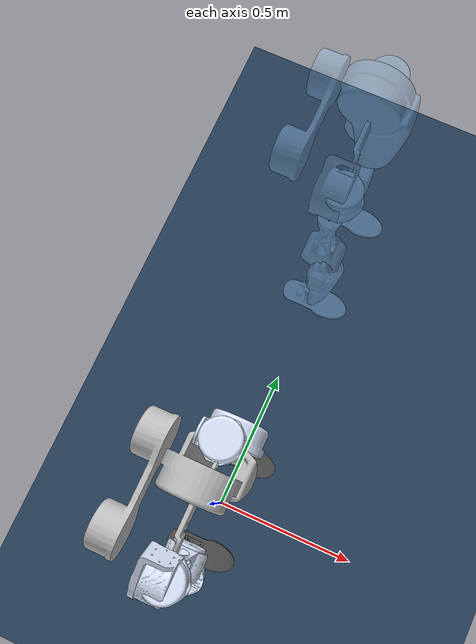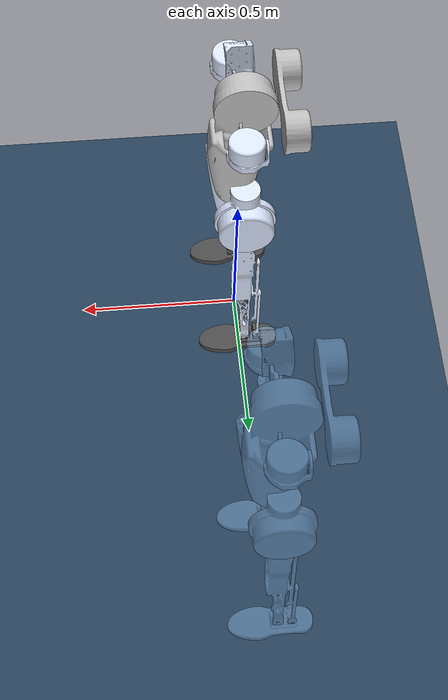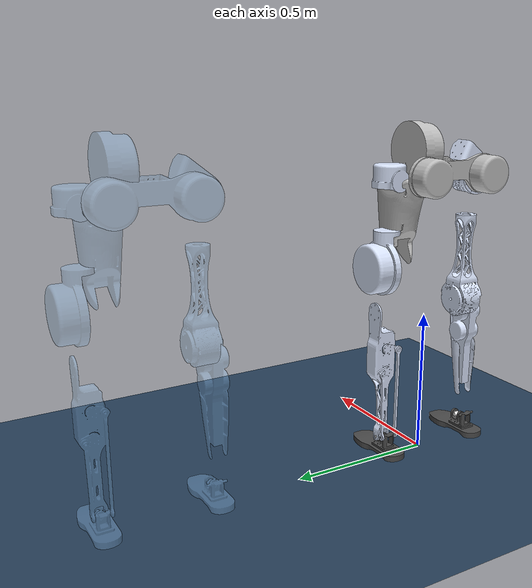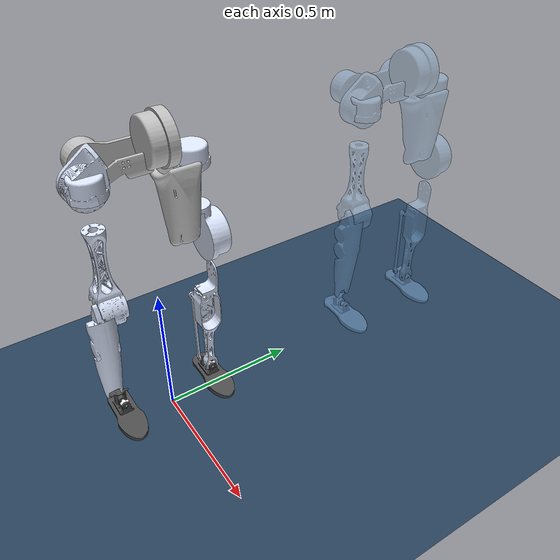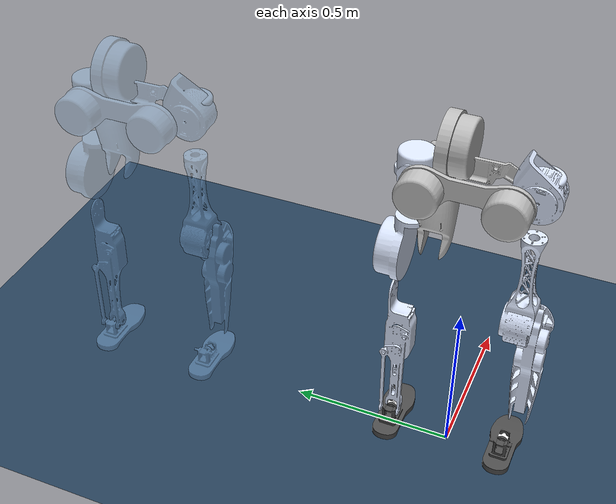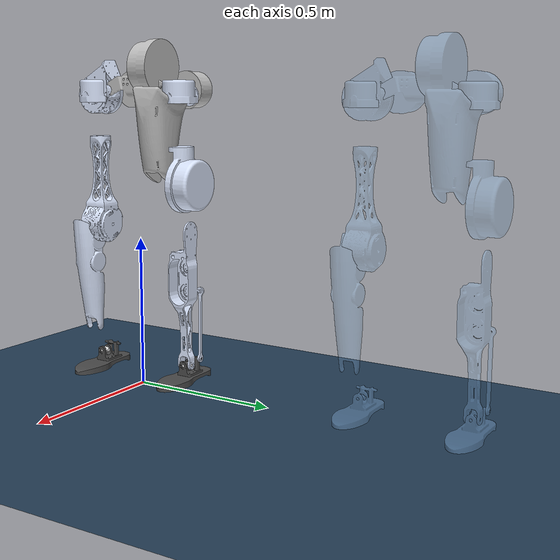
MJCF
<mujoco model="roboot16_scene_1">
  <include file="/Users/zhuran/IsaacLab/roboot16/assets/Roboot1.6/xml/roboot16_1.xml" />

  <visual>
    <headlight diffuse="0.6 0.6 0.6" ambient="0.3 0.3 0.3" specular="0 0 0" />
    <rgba haze="0.15 0.25 0.35 1" />
    <global azimuth="140" elevation="-20" />
  </visual>

  <asset>
    <texture type="skybox" builtin="gradient" rgb1="0.3 0.5 0.7" rgb2="0 0 0" width="512" height="3072" />
    <texture type="2d" name="groundplane" builtin="checker" mark="edge" rgb1="0.2 0.3 0.4" rgb2="0.1 0.2 0.3" markrgb="0.8 0.8 0.8" width="300" height="300" />
    <material name="groundplane" texture="groundplane" texuniform="true" texrepeat="5 5" reflectance="0.2" />
  </asset>

  <worldbody>
    <light pos="0 0 1.5" dir="0 0 -1" directional="true" />
    <geom name="floor" size="0 0 0.05" type="plane" material="groundplane" condim="3" friction="1.2 0.02 0.01" />
  <body name="ref_base_link" pos="0 1.0 1.0" childclass="roboot16">
      <inertial pos="0.00049152 -3.0954e-08 0.25629" mass="31.023" fullinertia="0.26899 0.13808 0.24725 4.7185e-10 -2.7449e-06 1.2373e-10" />
      <freejoint />
      <geom class="visual" material="silver" mesh="base_link" contype="0" conaffinity="0" rgba="0.6 0.8 1.0 0.35" />
      <geom class="collision" type="box" pos="0 0 0.21" size="0.1 0.105 0.175" rgba="0.75 0.75 0.75 0.35" contype="0" conaffinity="0" />
      <site name="ref_imu" pos="0 0 0.26" />

      <body name="ref_right_hip_pitch_link" pos="0.00049158 -0.10845 0.059136">
        <inertial pos="-0.014554 -0.039773 -0.051175" quat="0.965049 -0.245902 0.0774212 -0.0471021" mass="2.634" diaginertia="0.00201801 0.0014948 0.000807932" />
        <joint name="ref_right_hip_pitch_joint" axis="0 0.906308 0.422619" range="-2.6 2.6" />
        <geom class="visual" material="ice" mesh="left_hip_pitch_link" contype="0" conaffinity="0" rgba="0.6 0.8 1.0 0.35" />
        <geom class="collision" type="cylinder" pos="-0.06 -0.06 -0.08" quat="0.707388 0 0.706825 0" size="0.06 0.025" contype="0" conaffinity="0" rgba="0.6 0.8 1.0 0.35" />

        <body name="ref_right_hip_roll_link" pos="0.019165 -0.058655 -0.083623">
          <inertial pos="0.0074434 -2.3963e-05 -0.070083" quat="0.699455 0.704896 -0.0825397 0.0840927" mass="1.896" diaginertia="0.000595008 0.000509235 0.000471627" />
          <joint name="ref_right_hip_roll_joint" axis="-1 0 0" range="-0.8 2" />
          <geom class="visual" material="ice" mesh="left_hip_roll_link" contype="0" conaffinity="0" rgba="0.6 0.8 1.0 0.35" />
          <geom class="collision" type="cylinder" pos="0.02 0 0" quat="0.707388 0 0.706825 0" size="0.06 0.01" contype="0" conaffinity="0" rgba="0.6 0.8 1.0 0.35" />

          <body name="ref_right_hip_yaw_link" pos="-0.017415 -0.0036252 -0.14039">
            <inertial pos="5.0405e-05 0.003536 -0.17718" quat="0.706847 0.000100203 0.000157186 0.707366" mass="2.865" diaginertia="0.0070209 0.0068188 0.000931829" />
            <joint name="ref_right_hip_yaw_joint" axis="0 0 1" range="-2.6 2.6" />
            <geom class="visual" material="ice" mesh="left_hip_yaw_link" contype="0" conaffinity="0" rgba="0.6 0.8 1.0 0.35" />
            <geom class="collision" type="cylinder" pos="0 0 -0.15" size="0.055 0.11" contype="0" conaffinity="0" rgba="0.6 0.8 1.0 0.35" />

            <body name="ref_right_knee_link" pos="0 -0.0365 -0.298">
              <inertial pos="-0.01609 0.029412 -0.20201" quat="0.999949 0.000804618 0.00958423 -0.00317808" mass="2.161" diaginertia="0.011596 0.011377 0.000743545" />
              <joint name="ref_right_knee_joint" axis="0 1 0" range="-0.2 1.8" />
              <geom class="visual" material="ice" mesh="left_knee_link" contype="0" conaffinity="0" rgba="0.6 0.8 1.0 0.35" />
              <geom class="collision" type="box" pos="0 0.028 -0.19" size="0.045 0.032 0.08" contype="0" conaffinity="0" rgba="0.6 0.8 1.0 0.35" />
              <geom name="ref_right_shank_collision" class="collision" type="capsule" fromto="0 0.018 -0.11 0 0.018 -0.36" size="0.03" rgba="0.8 0.5 0.2 0.35" contype="0" conaffinity="0" />

              <body name="ref_right_ankle_pitch_link" pos="-0.013 0.030625 -0.44831">
                <inertial pos="0 0 0" quat="0.504216 0.504216 -0.495749 0.495749" mass="0.007" diaginertia="1.18541e-06 7.84935e-07 5.3402e-07" />
                <joint name="ref_right_ankle_pitch_joint" axis="0 1 0" range="-0.5 1" />
                <geom class="visual" material="white" mesh="left_ankle_pitch_link" contype="0" conaffinity="0" rgba="0.6 0.8 1.0 0.35" />

                <body name="ref_right_ankle_roll_link" pos="-0.0023336 0 3.9519e-05">
                  <inertial pos="0.0084316 0.00010541 -0.0362" quat="-0.00103283 0.718201 -0.0010349 0.695834" mass="0.72" diaginertia="0.00263717 0.0023595 0.000370292" />
                  <joint name="ref_right_ankle_roll_joint" axis="1 0 0" range="-0.4 0.4" />
                  <geom class="visual" material="dark" mesh="left_ankle_roll_link" contype="0" conaffinity="0" rgba="0.6 0.8 1.0 0.35" />
                  <geom name="ref_right_foot_fore_collision" class="foot_collision" type="box" pos="0.072 0 -0.048" size="0.06 0.045 0.008" rgba="0.2 0.8 0.2 0.35" contype="0" conaffinity="0" />
                  <geom name="ref_right_foot_rear_collision" class="foot_collision" type="box" pos="-0.078 0 -0.0458" size="0.022 0.034 0.008" rgba="0.2 0.8 0.2 0.35" contype="0" conaffinity="0" />
                  <geom name="ref_right_foot_heel_collision" class="foot_collision" type="box" pos="-0.045 0 -0.042" size="0.03 0.038 0.006" rgba="0.2 0.8 0.2 0.35" contype="0" conaffinity="0" />
                </body>
              </body>
            </body>
          </body>
        </body>
      </body>

      <body name="ref_left_hip_pitch_link" pos="0.00049158 0.095534 0.065158">
        <inertial pos="-0.014554 0.052688 -0.057198" quat="0.965048 0.245905 0.0774219 0.0471014" mass="2.634" diaginertia="0.00201801 0.0014948 0.00080794" />
        <joint name="ref_left_hip_pitch_joint" axis="0 0.906308 -0.422619" range="-2.6 2.6" />
        <geom class="visual" material="silver" mesh="right_hip_pitch_link" contype="0" conaffinity="0" rgba="0.6 0.8 1.0 0.35" />
        <geom class="collision" type="cylinder" pos="-0.06 0.07 -0.09" quat="0.707388 0 0.706825 0" size="0.06 0.025" contype="0" conaffinity="0" rgba="0.6 0.8 1.0 0.35" />

        <body name="ref_left_hip_roll_link" pos="0.0030702 0.07157 -0.089646">
          <inertial pos="0.023539 2.3928e-05 -0.070083" quat="0.704894 0.699457 -0.0840917 0.0825408" mass="1.896" diaginertia="0.000595008 0.000509235 0.000471627" />
          <joint name="ref_left_hip_roll_joint" axis="1 0 0" range="-0.8 2" />
          <geom class="visual" material="ice" mesh="right_hip_roll_link" contype="0" conaffinity="0" rgba="0.6 0.8 1.0 0.35" />
          <geom class="collision" type="cylinder" pos="0.04 0 0" quat="0.707388 0 0.706825 0" size="0.06 0.01" contype="0" conaffinity="0" rgba="0.6 0.8 1.0 0.35" />

          <body name="ref_left_hip_yaw_link" pos="-0.0013202 0.0036252 -0.14039">
            <inertial pos="5.0461e-05 -0.003536 -0.17717" quat="0.707365 0.000157066 0.000100226 0.706849" mass="2.865" diaginertia="0.0070209 0.0068188 0.000931829" />
            <joint name="ref_left_hip_yaw_joint" axis="0 0 -1" range="-2.6 2.6" />
            <geom class="visual" material="ice" mesh="right_hip_yaw_link" contype="0" conaffinity="0" rgba="0.6 0.8 1.0 0.35" />
            <geom class="collision" type="cylinder" pos="0 0 -0.15" size="0.055 0.11" contype="0" conaffinity="0" rgba="0.6 0.8 1.0 0.35" />

            <body name="ref_left_knee_link" pos="0 0.035647 -0.29631">
              <inertial pos="-0.01609 -0.028559 -0.2037" quat="0.999949 -0.000804527 0.00958423 0.00317776" mass="2.161" diaginertia="0.011596 0.011377 0.000743545" />
              <joint name="ref_left_knee_joint" axis="0 1 0" range="-0.2 1.8" />
              <geom class="visual" material="ice" mesh="right_knee_link" contype="0" conaffinity="0" rgba="0.6 0.8 1.0 0.35" />
              <geom class="collision" type="box" pos="0 -0.028 -0.19" size="0.045 0.032 0.08" contype="0" conaffinity="0" rgba="0.6 0.8 1.0 0.35" />
              <geom name="ref_left_shank_collision" class="collision" type="capsule" fromto="0 -0.018 -0.11 0 -0.018 -0.36" size="0.03" rgba="0.8 0.5 0.2 0.35" contype="0" conaffinity="0" />

              <body name="ref_left_ankle_pitch_link" pos="-0.013 -0.029772 -0.45">
                <inertial pos="0 0 0" quat="0.504216 0.504216 -0.495749 0.495749" mass="0.007" diaginertia="1.18541e-06 7.84935e-07 5.3402e-07" />
                <joint name="ref_left_ankle_pitch_joint" axis="0 1 0" range="-0.5 1" />
                <geom class="visual" material="white" mesh="right_ankle_pitch_link" contype="0" conaffinity="0" rgba="0.6 0.8 1.0 0.35" />

                <body name="ref_left_ankle_roll_link">
                  <inertial pos="0.006098 -0.00010547 -0.03616" quat="0.00103287 0.718201 0.00103542 0.695834" mass="0.72" diaginertia="0.00263717 0.0023595 0.000370292" />
                  <joint name="ref_left_ankle_roll_joint" axis="-1 0 0" range="-0.4 0.4" />
                  <geom class="visual" material="dark" mesh="right_ankle_roll_link" contype="0" conaffinity="0" rgba="0.6 0.8 1.0 0.35" />
                  <geom name="ref_left_foot_fore_collision" class="foot_collision" type="box" pos="0.072 0 -0.048" size="0.06 0.045 0.008" rgba="0.2 0.8 0.2 0.35" contype="0" conaffinity="0" />
                  <geom name="ref_left_foot_rear_collision" class="foot_collision" type="box" pos="-0.078 0 -0.0458" size="0.022 0.034 0.008" rgba="0.2 0.8 0.2 0.35" contype="0" conaffinity="0" />
                  <geom name="ref_left_foot_heel_collision" class="foot_collision" type="box" pos="-0.045 0 -0.042" size="0.03 0.038 0.006" rgba="0.2 0.8 0.2 0.35" contype="0" conaffinity="0" />
                </body>
              </body>
            </body>
          </body>
        </body>
      </body>
    </body>
  </worldbody>
</mujoco>

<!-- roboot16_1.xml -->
<mujoco model="roboot16_1">
  <compiler angle="radian" meshdir="../meshes" autolimits="true"/>

  <option timestep="0.005" iterations="50" ls_iterations="20"/>

  <default>
    <default class="roboot16">
      <joint damping="1" armature="0.01"/>
      <position ctrllimited="true" forcelimited="true"/>
      <default class="visual">
        <geom type="mesh" contype="0" conaffinity="0" group="2"/>
      </default>
      <default class="collision">
        <geom group="3" mass="0" density="0" contype="1" conaffinity="1" condim="3" friction="1.0 0.02 0.01"/>
      </default>
      <default class="foot_collision">
        <geom group="3" mass="0" density="0" contype="1" conaffinity="1" condim="3" friction="1.2 0.02 0.01"/>
      </default>
      <site size="0.01" group="4"/>
    </default>
  </default>

  <asset>
    <material name="silver" rgba="0.75294 0.75294 0.75294 1"/>
    <material name="ice" rgba="0.86667 0.9098 1 1"/>
    <material name="white" rgba="1 1 1 1"/>
    <material name="dark" rgba="0.29804 0.29804 0.29804 1"/>

    <mesh name="base_link" file="base_link.STL"/>
    <mesh name="left_hip_pitch_link" file="left_hip_pitch_link.STL"/>
    <mesh name="left_hip_roll_link" file="left_hip_roll_link.STL"/>
    <mesh name="left_hip_yaw_link" file="left_hip_yaw_link.STL"/>
    <mesh name="left_knee_link" file="left_knee_link.STL"/>
    <mesh name="left_ankle_pitch_link" file="left_ankle_pitch_link.STL"/>
    <mesh name="left_ankle_roll_link" file="left_ankle_roll_link.STL"/>
    <mesh name="right_hip_pitch_link" file="right_hip_pitch_link.STL"/>
    <mesh name="right_hip_roll_link" file="right_hip_roll_link.STL"/>
    <mesh name="right_hip_yaw_link" file="right_hip_yaw_link.STL"/>
    <mesh name="right_knee_link" file="right_knee_link.STL"/>
    <mesh name="right_ankle_pitch_link" file="right_ankle_pitch_link.STL"/>
    <mesh name="right_ankle_roll_link" file="right_ankle_roll_link.STL"/>
  </asset>

  <worldbody>
    <body name="base_link" pos="0 0 1.0" childclass="roboot16">
      <inertial pos="0.00049152 -3.0954e-08 0.25629" mass="31.023" fullinertia="0.26899 0.13808 0.24725 4.7185e-10 -2.7449e-06 1.2373e-10"/>
      <freejoint/>
      <geom class="visual" material="silver" mesh="base_link"/>
      <geom class="collision" type="box" pos="0 0 0.21" size="0.1 0.105 0.175" rgba="0.75 0.75 0.75 1"/>
      <site name="imu" pos="0 0 0.26"/>

      <body name="right_hip_pitch_link" pos="0.00049158 -0.10845 0.059136">
        <inertial pos="-0.014554 -0.039773 -0.051175" quat="0.965049 -0.245902 0.0774212 -0.0471021" mass="2.634" diaginertia="0.00201801 0.0014948 0.000807932"/>
        <joint name="right_hip_pitch_joint" axis="0 0.906308 0.422619" range="-2.6 2.6"/>
        <geom class="visual" material="ice" mesh="left_hip_pitch_link"/>
        <geom class="collision" type="cylinder" pos="-0.06 -0.06 -0.08" quat="0.707388 0 0.706825 0" size="0.06 0.025"/>

        <body name="right_hip_roll_link" pos="0.019165 -0.058655 -0.083623">
          <inertial pos="0.0074434 -2.3963e-05 -0.070083" quat="0.699455 0.704896 -0.0825397 0.0840927" mass="1.896" diaginertia="0.000595008 0.000509235 0.000471627"/>
          <joint name="right_hip_roll_joint" axis="-1 0 0" range="-0.8 2"/>
          <geom class="visual" material="ice" mesh="left_hip_roll_link"/>
          <geom class="collision" type="cylinder" pos="0.02 0 0" quat="0.707388 0 0.706825 0" size="0.06 0.01"/>

          <body name="right_hip_yaw_link" pos="-0.017415 -0.0036252 -0.14039">
            <inertial pos="5.0405e-05 0.003536 -0.17718" quat="0.706847 0.000100203 0.000157186 0.707366" mass="2.865" diaginertia="0.0070209 0.0068188 0.000931829"/>
            <joint name="right_hip_yaw_joint" axis="0 0 1" range="-2.6 2.6"/>
            <geom class="visual" material="ice" mesh="left_hip_yaw_link"/>
            <geom class="collision" type="cylinder" pos="0 0 -0.15" size="0.055 0.11"/>

            <body name="right_knee_link" pos="0 -0.0365 -0.298">
              <inertial pos="-0.01609 0.029412 -0.20201" quat="0.999949 0.000804618 0.00958423 -0.00317808" mass="2.161" diaginertia="0.011596 0.011377 0.000743545"/>
              <joint name="right_knee_joint" axis="0 1 0" range="-0.2 1.8"/>
              <geom class="visual" material="ice" mesh="left_knee_link"/>
              <geom class="collision" type="box" pos="0 0.028 -0.19" size="0.045 0.032 0.08"/>
              <geom name="right_shank_collision" class="collision" type="capsule" fromto="0 0.018 -0.11 0 0.018 -0.36" size="0.03" rgba="0.8 0.5 0.2 0.12"/>

              <body name="right_ankle_pitch_link" pos="-0.013 0.030625 -0.44831">
                <inertial pos="0 0 0" quat="0.504216 0.504216 -0.495749 0.495749" mass="0.007" diaginertia="1.18541e-06 7.84935e-07 5.3402e-07"/>
                <joint name="right_ankle_pitch_joint" axis="0 1 0" range="-0.5 1"/>
                <geom class="visual" material="white" mesh="left_ankle_pitch_link"/>

                <body name="right_ankle_roll_link" pos="-0.0023336 0 3.9519e-05">
                  <inertial pos="0.0084316 0.00010541 -0.0362" quat="-0.00103283 0.718201 -0.0010349 0.695834" mass="0.72" diaginertia="0.00263717 0.0023595 0.000370292"/>
                  <joint name="right_ankle_roll_joint" axis="1 0 0" range="-0.4 0.4"/>
                  <geom class="visual" material="dark" mesh="left_ankle_roll_link"/>
                  <geom
                    name="right_foot_fore_collision"
                    class="foot_collision"
                    type="box"
                    pos="0.072 0 -0.048"
                    size="0.06 0.045 0.008"
                    rgba="0.2 0.8 0.2 0.2"/>
                  <geom
                    name="right_foot_rear_collision"
                    class="foot_collision"
                    type="box"
                    pos="-0.078 0 -0.0458"
                    size="0.022 0.034 0.008"
                    rgba="0.2 0.8 0.2 0.2"/>
                  <geom
                    name="right_foot_heel_collision"
                    class="foot_collision"
                    type="box"
                    pos="-0.045 0 -0.042"
                    size="0.03 0.038 0.006"
                    rgba="0.2 0.8 0.2 0.2"/>
                </body>
              </body>
            </body>
          </body>
        </body>
      </body>

      <body name="left_hip_pitch_link" pos="0.00049158 0.095534 0.065158">
        <inertial pos="-0.014554 0.052688 -0.057198" quat="0.965048 0.245905 0.0774219 0.0471014" mass="2.634" diaginertia="0.00201801 0.0014948 0.00080794"/>
        <joint name="left_hip_pitch_joint" axis="0 0.906308 -0.422619" range="-2.6 2.6"/>
        <geom class="visual" material="silver" mesh="right_hip_pitch_link"/>
        <geom class="collision" type="cylinder" pos="-0.06 0.07 -0.09" quat="0.707388 0 0.706825 0" size="0.06 0.025"/>

        <body name="left_hip_roll_link" pos="0.0030702 0.07157 -0.089646">
          <inertial pos="0.023539 2.3928e-05 -0.070083" quat="0.704894 0.699457 -0.0840917 0.0825408" mass="1.896" diaginertia="0.000595008 0.000509235 0.000471627"/>
          <joint name="left_hip_roll_joint" axis="1 0 0" range="-0.8 2"/>
          <geom class="visual" material="ice" mesh="right_hip_roll_link"/>
          <geom class="collision" type="cylinder" pos="0.04 0 0" quat="0.707388 0 0.706825 0" size="0.06 0.01"/>

          <body name="left_hip_yaw_link" pos="-0.0013202 0.0036252 -0.14039">
            <inertial pos="5.0461e-05 -0.003536 -0.17717" quat="0.707365 0.000157066 0.000100226 0.706849" mass="2.865" diaginertia="0.0070209 0.0068188 0.000931829"/>
            <joint name="left_hip_yaw_joint" axis="0 0 -1" range="-2.6 2.6"/>
            <geom class="visual" material="ice" mesh="right_hip_yaw_link"/>
            <geom class="collision" type="cylinder" pos="0 0 -0.15" size="0.055 0.11"/>

            <body name="left_knee_link" pos="0 0.035647 -0.29631">
              <inertial pos="-0.01609 -0.028559 -0.2037" quat="0.999949 -0.000804527 0.00958423 0.00317776" mass="2.161" diaginertia="0.011596 0.011377 0.000743545"/>
              <joint name="left_knee_joint" axis="0 1 0" range="-0.2 1.8"/>
              <geom class="visual" material="ice" mesh="right_knee_link"/>
              <geom class="collision" type="box" pos="0 -0.028 -0.19" size="0.045 0.032 0.08"/>
              <geom name="left_shank_collision" class="collision" type="capsule" fromto="0 -0.018 -0.11 0 -0.018 -0.36" size="0.03" rgba="0.8 0.5 0.2 0.12"/>

              <body name="left_ankle_pitch_link" pos="-0.013 -0.029772 -0.45">
                <inertial pos="0 0 0" quat="0.504216 0.504216 -0.495749 0.495749" mass="0.007" diaginertia="1.18541e-06 7.84935e-07 5.3402e-07"/>
                <joint name="left_ankle_pitch_joint" axis="0 1 0" range="-0.5 1"/>
                <geom class="visual" material="white" mesh="right_ankle_pitch_link"/>

                <body name="left_ankle_roll_link">
                  <inertial pos="0.006098 -0.00010547 -0.03616" quat="0.00103287 0.718201 0.00103542 0.695834" mass="0.72" diaginertia="0.00263717 0.0023595 0.000370292"/>
                  <joint name="left_ankle_roll_joint" axis="-1 0 0" range="-0.4 0.4"/>
                  <geom class="visual" material="dark" mesh="right_ankle_roll_link"/>
                  <geom
                    name="left_foot_fore_collision"
                    class="foot_collision"
                    type="box"
                    pos="0.072 0 -0.048"
                    size="0.06 0.045 0.008"
                    rgba="0.2 0.8 0.2 0.2"/>
                  <geom
                    name="left_foot_rear_collision"
                    class="foot_collision"
                    type="box"
                    pos="-0.078 0 -0.0458"
                    size="0.022 0.034 0.008"
                    rgba="0.2 0.8 0.2 0.2"/>
                  <geom
                    name="left_foot_heel_collision"
                    class="foot_collision"
                    type="box"
                    pos="-0.045 0 -0.042"
                    size="0.03 0.038 0.006"
                    rgba="0.2 0.8 0.2 0.2"/>
                </body>
              </body>
            </body>
          </body>
        </body>
      </body>
    </body>
  </worldbody>

  <actuator>
    <position class="roboot16" name="right_hip_pitch_motor" joint="right_hip_pitch_joint" kp="200" kv="5" ctrlrange="-2.6 2.6" forcerange="-300 300"/>
    <position class="roboot16" name="right_hip_roll_motor" joint="right_hip_roll_joint" kp="150" kv="5" ctrlrange="-0.8 2.0" forcerange="-300 300"/>
    <position class="roboot16" name="right_hip_yaw_motor" joint="right_hip_yaw_joint" kp="150" kv="5" ctrlrange="-2.6 2.6" forcerange="-300 300"/>
    <position class="roboot16" name="right_knee_motor" joint="right_knee_joint" kp="200" kv="5" ctrlrange="-0.2 1.8" forcerange="-300 300"/>
    <position class="roboot16" name="right_ankle_pitch_motor" joint="right_ankle_pitch_joint" kp="20" kv="4" ctrlrange="-0.5 1.0" forcerange="-40 40"/>
    <position class="roboot16" name="right_ankle_roll_motor" joint="right_ankle_roll_joint" kp="20" kv="4" ctrlrange="-0.4 0.4" forcerange="-40 40"/>
    <position class="roboot16" name="left_hip_pitch_motor" joint="left_hip_pitch_joint" kp="200" kv="5" ctrlrange="-2.6 2.6" forcerange="-300 300"/>
    <position class="roboot16" name="left_hip_roll_motor" joint="left_hip_roll_joint" kp="150" kv="5" ctrlrange="-0.8 2.0" forcerange="-300 300"/>
    <position class="roboot16" name="left_hip_yaw_motor" joint="left_hip_yaw_joint" kp="150" kv="5" ctrlrange="-2.6 2.6" forcerange="-300 300"/>
    <position class="roboot16" name="left_knee_motor" joint="left_knee_joint" kp="200" kv="5" ctrlrange="-0.2 1.8" forcerange="-300 300"/>
    <position class="roboot16" name="left_ankle_pitch_motor" joint="left_ankle_pitch_joint" kp="20" kv="4" ctrlrange="-0.5 1.0" forcerange="-40 40"/>
    <position class="roboot16" name="left_ankle_roll_motor" joint="left_ankle_roll_joint" kp="20" kv="4" ctrlrange="-0.4 0.4" forcerange="-40 40"/>
  </actuator>

  <sensor>
    <framequat name="base_quat" objtype="site" objname="imu"/>
    <gyro name="base_gyro" site="imu"/>
    <accelerometer name="base_acc" site="imu"/>
    <jointpos name="right_hip_pitch_pos" joint="right_hip_pitch_joint"/>
    <jointpos name="right_hip_roll_pos" joint="right_hip_roll_joint"/>
    <jointpos name="right_hip_yaw_pos" joint="right_hip_yaw_joint"/>
    <jointpos name="right_knee_pos" joint="right_knee_joint"/>
    <jointpos name="right_ankle_pitch_pos" joint="right_ankle_pitch_joint"/>
    <jointpos name="right_ankle_roll_pos" joint="right_ankle_roll_joint"/>
    <jointpos name="left_hip_pitch_pos" joint="left_hip_pitch_joint"/>
    <jointpos name="left_hip_roll_pos" joint="left_hip_roll_joint"/>
    <jointpos name="left_hip_yaw_pos" joint="left_hip_yaw_joint"/>
    <jointpos name="left_knee_pos" joint="left_knee_joint"/>
    <jointpos name="left_ankle_pitch_pos" joint="left_ankle_pitch_joint"/>
    <jointpos name="left_ankle_roll_pos" joint="left_ankle_roll_joint"/>
    <jointvel name="right_hip_pitch_vel" joint="right_hip_pitch_joint"/>
    <jointvel name="right_hip_roll_vel" joint="right_hip_roll_joint"/>
    <jointvel name="right_hip_yaw_vel" joint="right_hip_yaw_joint"/>
    <jointvel name="right_knee_vel" joint="right_knee_joint"/>
    <jointvel name="right_ankle_pitch_vel" joint="right_ankle_pitch_joint"/>
    <jointvel name="right_ankle_roll_vel" joint="right_ankle_roll_joint"/>
    <jointvel name="left_hip_pitch_vel" joint="left_hip_pitch_joint"/>
    <jointvel name="left_hip_roll_vel" joint="left_hip_roll_joint"/>
    <jointvel name="left_hip_yaw_vel" joint="left_hip_yaw_joint"/>
    <jointvel name="left_knee_vel" joint="left_knee_joint"/>
    <jointvel name="left_ankle_pitch_vel" joint="left_ankle_pitch_joint"/>
    <jointvel name="left_ankle_roll_vel" joint="left_ankle_roll_joint"/>
  </sensor>

  <keyframe>
    <key
      name="home"
      qpos="0 0 0.99 1 0 0 0
            0 0 0 0 0 0
            0 0 0 0 0 0"/>
  </keyframe>
</mujoco>
